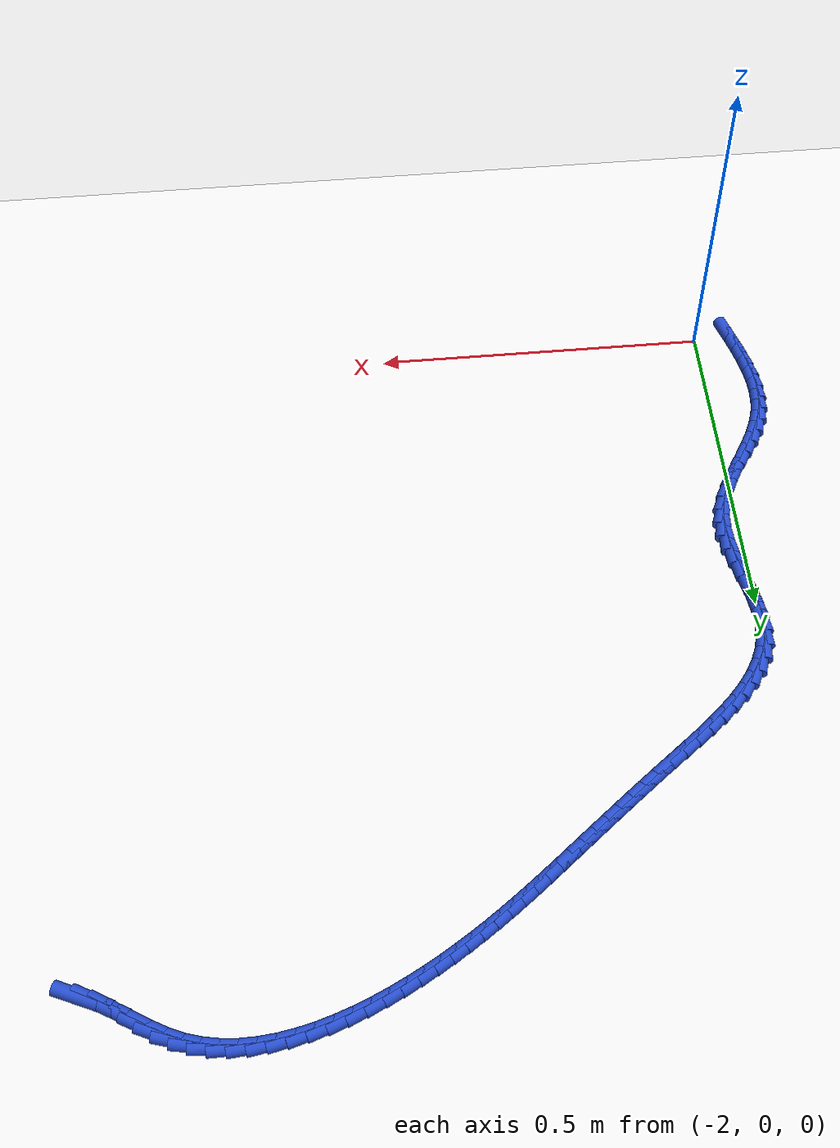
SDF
<sdf version="1.6">
 <world name="default">
  <model name="ground_plane">
   <static>1</static>
   <link name="link">
    <collision name="collision">
     <geometry><plane><normal>0 0 1</normal><size>100 100</size></plane></geometry>
     <surface><friction><ode><mu>100</mu><mu2>50</mu2></ode></friction></surface>
    </collision>
    <visual name="visual">
     <cast_shadows>0</cast_shadows>
     <geometry><plane><normal>0 0 1</normal><size>100 100</size></plane></geometry>
     <material>
      <script><uri>file://media/materials/scripts/gazebo.material</uri><name>Gazebo/WhiteGlow</name></script>
     </material>
    </visual>
   </link>
  </model>
  <model name="line">
   <link name="link_71">
    <pose>-1.0619951755616022 0.9972905847153315 0.01 0 1.57 -0.41717820655222315</pose>
    <collision name="collision">
     <geometry><cylinder><radius>0.01</radius><length>0.08</length></cylinder></geometry>
    </collision>
    <visual name="visual">
     <material>
      <script><name>Gazebo/Blue</name><uri>file://media/materials/scripts/gazebo.material</uri></script>
     </material>
     <geometry><cylinder><radius>0.01</radius><length>0.08</length></cylinder></geometry>
    </visual>
   </link>
   <link name="link_72">
    <pose>-1.0830137298712708 1.0066058453347537 0.01 0 1.57 -0.5041663490242357</pose>
    <collision name="collision">
     <geometry><cylinder><radius>0.01</radius><length>0.08</length></cylinder></geometry>
    </collision>
    <visual name="visual">
     <material>
      <script><name>Gazebo/Blue</name><uri>file://media/materials/scripts/gazebo.material</uri></script>
     </material>
     <geometry><cylinder><radius>0.01</radius><length>0.08</length></cylinder></geometry>
    </visual>
   </link>
   <link name="link_73">
    <pose>-1.1034783453525545 1.0178966780143992 0.01 0 1.57 -0.5463712213394187</pose>
    <collision name="collision">
     <geometry><cylinder><radius>0.01</radius><length>0.08</length></cylinder></geometry>
    </collision>
    <visual name="visual">
     <material>
      <script><name>Gazebo/Blue</name><uri>file://media/materials/scripts/gazebo.material</uri></script>
     </material>
     <geometry><cylinder><radius>0.01</radius><length>0.08</length></cylinder></geometry>
    </visual>
   </link>
   <link name="link_74">
    <pose>-1.1236657990406393 1.0301731419103466 0.01 0 1.57 -0.5444186775033684</pose>
    <collision name="collision">
     <geometry><cylinder><radius>0.01</radius><length>0.08</length></cylinder></geometry>
    </collision>
    <visual name="visual">
     <material>
      <script><name>Gazebo/Blue</name><uri>file://media/materials/scripts/gazebo.material</uri></script>
     </material>
     <geometry><cylinder><radius>0.01</radius><length>0.08</length></cylinder></geometry>
    </visual>
   </link>
   <link name="link_75">
    <pose>-1.1438644750995501 1.0424024705698505 0.01 0 1.57 -0.49816332512608186</pose>
    <collision name="collision">
     <geometry><cylinder><radius>0.01</radius><length>0.08</length></cylinder></geometry>
    </collision>
    <visual name="visual">
     <material>
      <script><name>Gazebo/Blue</name><uri>file://media/materials/scripts/gazebo.material</uri></script>
     </material>
     <geometry><cylinder><radius>0.01</radius><length>0.08</length></cylinder></geometry>
    </visual>
   </link>
   <link name="link_76">
    <pose>-1.16436275769331 1.0535518975401656 0.01 0 1.57 -0.40585514558315117</pose>
    <collision name="collision">
     <geometry><cylinder><radius>0.01</radius><length>0.08</length></cylinder></geometry>
    </collision>
    <visual name="visual">
     <material>
      <script><name>Gazebo/Blue</name><uri>file://media/materials/scripts/gazebo.material</uri></script>
     </material>
     <geometry><cylinder><radius>0.01</radius><length>0.08</length></cylinder></geometry>
    </visual>
   </link>
   <link name="link_77">
    <pose>-1.1854420920754611 1.0626099447501587 0.01 0 1.57 -0.29059269104152613</pose>
    <collision name="collision">
     <geometry><cylinder><radius>0.01</radius><length>0.08</length></cylinder></geometry>
    </collision>
    <visual name="visual">
     <material>
      <script><name>Gazebo/Blue</name><uri>file://media/materials/scripts/gazebo.material</uri></script>
     </material>
     <geometry><cylinder><radius>0.01</radius><length>0.08</length></cylinder></geometry>
    </visual>
   </link>
   <link name="link_78">
    <pose>-1.2072037353344516 1.069117946336075 0.01 0 1.57 -0.18095843489095376</pose>
    <collision name="collision">
     <geometry><cylinder><radius>0.01</radius><length>0.08</length></cylinder></geometry>
    </collision>
    <visual name="visual">
     <material>
      <script><name>Gazebo/Blue</name><uri>file://media/materials/scripts/gazebo.material</uri></script>
     </material>
     <geometry><cylinder><radius>0.01</radius><length>0.08</length></cylinder></geometry>
    </visual>
   </link>
   <link name="link_79">
    <pose>-1.2295565140203688 1.073207607897364 0.01 0 1.57 -0.08002004956473212</pose>
    <collision name="collision">
     <geometry><cylinder><radius>0.01</radius><length>0.08</length></cylinder></geometry>
    </collision>
    <visual name="visual">
     <material>
      <script><name>Gazebo/Blue</name><uri>file://media/materials/scripts/gazebo.material</uri></script>
     </material>
     <geometry><cylinder><radius>0.01</radius><length>0.08</length></cylinder></geometry>
    </visual>
   </link>
   <link name="link_80">
    <pose>-1.25239986398118 1.075039445442667 0.01 0 1.57 0.011425766356564426</pose>
    <collision name="collision">
     <geometry><cylinder><radius>0.01</radius><length>0.08</length></cylinder></geometry>
    </collision>
    <visual name="visual">
     <material>
      <script><name>Gazebo/Blue</name><uri>file://media/materials/scripts/gazebo.material</uri></script>
     </material>
     <geometry><cylinder><radius>0.01</radius><length>0.08</length></cylinder></geometry>
    </visual>
   </link>
   <link name="link_81">
    <pose>-1.2756332210648524 1.074773974980625 0.01 0 1.57 0.09335035310838788</pose>
    <collision name="collision">
     <geometry><cylinder><radius>0.01</radius><length>0.08</length></cylinder></geometry>
    </collision>
    <visual name="visual">
     <material>
      <script><name>Gazebo/Blue</name><uri>file://media/materials/scripts/gazebo.material</uri></script>
     </material>
     <geometry><cylinder><radius>0.01</radius><length>0.08</length></cylinder></geometry>
    </visual>
   </link>
   <link name="link_82">
    <pose>-1.2991560211193534 1.0725717125198793 0.01 0 1.57 0.16623964003237704</pose>
    <collision name="collision">
     <geometry><cylinder><radius>0.01</radius><length>0.08</length></cylinder></geometry>
    </collision>
    <visual name="visual">
     <material>
      <script><name>Gazebo/Blue</name><uri>file://media/materials/scripts/gazebo.material</uri></script>
     </material>
     <geometry><cylinder><radius>0.01</radius><length>0.08</length></cylinder></geometry>
    </visual>
   </link>
   <link name="link_83">
    <pose>-1.3228676999926507 1.068593174069071 0.01 0 1.57 0.23086372103340913</pose>
    <collision name="collision">
     <geometry><cylinder><radius>0.01</radius><length>0.08</length></cylinder></geometry>
    </collision>
    <visual name="visual">
     <material>
      <script><name>Gazebo/Blue</name><uri>file://media/materials/scripts/gazebo.material</uri></script>
     </material>
     <geometry><cylinder><radius>0.01</radius><length>0.08</length></cylinder></geometry>
    </visual>
   </link>
   <link name="link_84">
    <pose>-1.3466676935327107 1.062998875636841 0.01 0 1.57 0.2881065337302563</pose>
    <collision name="collision">
     <geometry><cylinder><radius>0.01</radius><length>0.08</length></cylinder></geometry>
    </collision>
    <visual name="visual">
     <material>
      <script><name>Gazebo/Blue</name><uri>file://media/materials/scripts/gazebo.material</uri></script>
     </material>
     <geometry><cylinder><radius>0.01</radius><length>0.08</length></cylinder></geometry>
    </visual>
   </link>
   <link name="link_85">
    <pose>-1.3704554375875009 1.0559493332318306 0.01 0 1.57 0.33885732373718963</pose>
    <collision name="collision">
     <geometry><cylinder><radius>0.01</radius><length>0.08</length></cylinder></geometry>
    </collision>
    <visual name="visual">
     <material>
      <script><name>Gazebo/Blue</name><uri>file://media/materials/scripts/gazebo.material</uri></script>
     </material>
     <geometry><cylinder><radius>0.01</radius><length>0.08</length></cylinder></geometry>
    </visual>
   </link>
   <link name="link_86">
    <pose>-1.394130368004989 1.047605062862681 0.01 0 1.57 0.3839504416106811</pose>
    <collision name="collision">
     <geometry><cylinder><radius>0.01</radius><length>0.08</length></cylinder></geometry>
    </collision>
    <visual name="visual">
     <material>
      <script><name>Gazebo/Blue</name><uri>file://media/materials/scripts/gazebo.material</uri></script>
     </material>
     <geometry><cylinder><radius>0.01</radius><length>0.08</length></cylinder></geometry>
    </visual>
   </link>
   <link name="link_87">
    <pose>-1.4175919206331427 1.038126580538034 0.01 0 1.57 0.42413766194521507</pose>
    <collision name="collision">
     <geometry><cylinder><radius>0.01</radius><length>0.08</length></cylinder></geometry>
    </collision>
    <visual name="visual">
     <material>
      <script><name>Gazebo/Blue</name><uri>file://media/materials/scripts/gazebo.material</uri></script>
     </material>
     <geometry><cylinder><radius>0.01</radius><length>0.08</length></cylinder></geometry>
    </visual>
   </link>
   <link name="link_88">
    <pose>-1.4407395313199283 1.0276744022665294 0.01 0 1.57 0.4600801539726298</pose>
    <collision name="collision">
     <geometry><cylinder><radius>0.01</radius><length>0.08</length></cylinder></geometry>
    </collision>
    <visual name="visual">
     <material>
      <script><name>Gazebo/Blue</name><uri>file://media/materials/scripts/gazebo.material</uri></script>
     </material>
     <geometry><cylinder><radius>0.01</radius><length>0.08</length></cylinder></geometry>
    </visual>
   </link>
   <link name="link_89">
    <pose>-1.4634726359133141 1.0164090440568094 0.01 0 1.57 0.4923512137338881</pose>
    <collision name="collision">
     <geometry><cylinder><radius>0.01</radius><length>0.08</length></cylinder></geometry>
    </collision>
    <visual name="visual">
     <material>
      <script><name>Gazebo/Blue</name><uri>file://media/materials/scripts/gazebo.material</uri></script>
     </material>
     <geometry><cylinder><radius>0.01</radius><length>0.08</length></cylinder></geometry>
    </visual>
   </link>
   <link name="link_90">
    <pose>-1.4856906702612664 1.004491021917515 0.01 0 1.57 0.5214452828047791</pose>
    <collision name="collision">
     <geometry><cylinder><radius>0.01</radius><length>0.08</length></cylinder></geometry>
    </collision>
    <visual name="visual">
     <material>
      <script><name>Gazebo/Blue</name><uri>file://media/materials/scripts/gazebo.material</uri></script>
     </material>
     <geometry><cylinder><radius>0.01</radius><length>0.08</length></cylinder></geometry>
    </visual>
   </link>
   <link name="link_91">
    <pose>-1.5072932595968032 0.9920807122474734 0.01 0 1.57 0.5479879896261779</pose>
    <collision name="collision">
     <geometry><cylinder><radius>0.01</radius><length>0.08</length></cylinder></geometry>
    </collision>
    <visual name="visual">
     <material>
      <script><name>Gazebo/Blue</name><uri>file://media/materials/scripts/gazebo.material</uri></script>
     </material>
     <geometry><cylinder><radius>0.01</radius><length>0.08</length></cylinder></geometry>
    </visual>
   </link>
   <link name="link_92">
    <pose>-1.528225887309888 0.9793046859854214 0.01 0 1.57 0.5725260423239694</pose>
    <collision name="collision">
     <geometry><cylinder><radius>0.01</radius><length>0.08</length></cylinder></geometry>
    </collision>
    <visual name="visual">
     <material>
      <script><name>Gazebo/Blue</name><uri>file://media/materials/scripts/gazebo.material</uri></script>
     </material>
     <geometry><cylinder><radius>0.01</radius><length>0.08</length></cylinder></geometry>
    </visual>
   </link>
   <link name="link_93">
    <pose>-1.5485393089557906 0.9662119101230595 0.01 0 1.57 0.5949175428169848</pose>
    <collision name="collision">
     <geometry><cylinder><radius>0.01</radius><length>0.08</length></cylinder></geometry>
    </collision>
    <visual name="visual">
     <material>
      <script><name>Gazebo/Blue</name><uri>file://media/materials/scripts/gazebo.material</uri></script>
     </material>
     <geometry><cylinder><radius>0.01</radius><length>0.08</length></cylinder></geometry>
    </visual>
   </link>
   <link name="link_94">
    <pose>-1.5682989938779572 0.9528405050238737 0.01 0 1.57 0.614959366896582</pose>
    <collision name="collision">
     <geometry><cylinder><radius>0.01</radius><length>0.08</length></cylinder></geometry>
    </collision>
    <visual name="visual">
     <material>
      <script><name>Gazebo/Blue</name><uri>file://media/materials/scripts/gazebo.material</uri></script>
     </material>
     <geometry><cylinder><radius>0.01</radius><length>0.08</length></cylinder></geometry>
    </visual>
   </link>
   <link name="link_95">
    <pose>-1.5875704114198343 0.9392285910513496 0.01 0 1.57 0.6324721360858476</pose>
    <collision name="collision">
     <geometry><cylinder><radius>0.01</radius><length>0.08</length></cylinder></geometry>
    </collision>
    <visual name="visual">
     <material>
      <script><name>Gazebo/Blue</name><uri>file://media/materials/scripts/gazebo.material</uri></script>
     </material>
     <geometry><cylinder><radius>0.01</radius><length>0.08</length></cylinder></geometry>
    </visual>
   </link>
   <link name="link_96">
    <pose>-1.6064190309248698 0.9254142885689727 0.01 0 1.57 0.6473009762218896</pose>
    <collision name="collision">
     <geometry><cylinder><radius>0.01</radius><length>0.08</length></cylinder></geometry>
    </collision>
    <visual name="visual">
     <material>
      <script><name>Gazebo/Blue</name><uri>file://media/materials/scripts/gazebo.material</uri></script>
     </material>
     <geometry><cylinder><radius>0.01</radius><length>0.08</length></cylinder></geometry>
    </visual>
   </link>
   <link name="link_97">
    <pose>-1.624910321736509 0.9114357179402286 0.01 0 1.57 0.6593155275022328</pose>
    <collision name="collision">
     <geometry><cylinder><radius>0.01</radius><length>0.08</length></cylinder></geometry>
    </collision>
    <visual name="visual">
     <material>
      <script><name>Gazebo/Blue</name><uri>file://media/materials/scripts/gazebo.material</uri></script>
     </material>
     <geometry><cylinder><radius>0.01</radius><length>0.08</length></cylinder></geometry>
    </visual>
   </link>
   <link name="link_98">
    <pose>-1.6431097531981997 0.8973309995286032 0.01 0 1.57 0.6684094611919306</pose>
    <collision name="collision">
     <geometry><cylinder><radius>0.01</radius><length>0.08</length></cylinder></geometry>
    </collision>
    <visual name="visual">
     <material>
      <script><name>Gazebo/Blue</name><uri>file://media/materials/scripts/gazebo.material</uri></script>
     </material>
     <geometry><cylinder><radius>0.01</radius><length>0.08</length></cylinder></geometry>
    </visual>
   </link>
   <link name="link_99">
    <pose>-1.6610827946533886 0.8831382536975818 0.01 0 1.57 0.674499769587454</pose>
    <collision name="collision">
     <geometry><cylinder><radius>0.01</radius><length>0.08</length></cylinder></geometry>
    </collision>
    <visual name="visual">
     <material>
      <script><name>Gazebo/Blue</name><uri>file://media/materials/scripts/gazebo.material</uri></script>
     </material>
     <geometry><cylinder><radius>0.01</radius><length>0.08</length></cylinder></geometry>
    </visual>
   </link>
   <link name="link_100">
    <pose>-1.6788949154455226 0.8688956008106505 0.01 0 1.57 0.6775260787528726</pose>
    <collision name="collision">
     <geometry><cylinder><radius>0.01</radius><length>0.08</length></cylinder></geometry>
    </collision>
    <visual name="visual">
     <material>
      <script><name>Gazebo/Blue</name><uri>file://media/materials/scripts/gazebo.material</uri></script>
     </material>
     <geometry><cylinder><radius>0.01</radius><length>0.08</length></cylinder></geometry>
    </visual>
   </link>
   <link name="link_101">
    <pose>-1.696611584918048 0.8546411612312947 0.01 0 1.57 0.6775412201851119</pose>
    <collision name="collision">
     <geometry><cylinder><radius>0.01</radius><length>0.08</length></cylinder></geometry>
    </collision>
    <visual name="visual">
     <material>
      <script><name>Gazebo/Blue</name><uri>file://media/materials/scripts/gazebo.material</uri></script>
     </material>
     <geometry><cylinder><radius>0.01</radius><length>0.08</length></cylinder></geometry>
    </visual>
   </link>
   <link name="link_102">
    <pose>-1.7142984869347342 0.8404102307143501 0.01 0 1.57 0.6759508668978722</pose>
    <collision name="collision">
     <geometry><cylinder><radius>0.01</radius><length>0.08</length></cylinder></geometry>
    </collision>
    <visual name="visual">
     <material>
      <script><name>Gazebo/Blue</name><uri>file://media/materials/scripts/gazebo.material</uri></script>
     </material>
     <geometry><cylinder><radius>0.01</radius><length>0.08</length></cylinder></geometry>
    </visual>
   </link>
   <link name="link_103">
    <pose>-1.7320246478381358 0.8261940942916053 0.01 0 1.57 0.6738919612600929</pose>
    <collision name="collision">
     <geometry><cylinder><radius>0.01</radius><length>0.08</length></cylinder></geometry>
    </collision>
    <visual name="visual">
     <material>
      <script><name>Gazebo/Blue</name><uri>file://media/materials/scripts/gazebo.material</uri></script>
     </material>
     <geometry><cylinder><radius>0.01</radius><length>0.08</length></cylinder></geometry>
    </visual>
   </link>
   <link name="link_104">
    <pose>-1.7498617365782736 0.8119492415412916 0.01 0 1.57 0.6714235759140815</pose>
    <collision name="collision">
     <geometry><cylinder><radius>0.01</radius><length>0.08</length></cylinder></geometry>
    </collision>
    <visual name="visual">
     <material>
      <script><name>Gazebo/Blue</name><uri>file://media/materials/scripts/gazebo.material</uri></script>
     </material>
     <geometry><cylinder><radius>0.01</radius><length>0.08</length></cylinder></geometry>
    </visual>
   </link>
   <link name="link_105">
    <pose>-1.7678814942246637 0.7976312124376699 0.01 0 1.57 0.6685823350916043</pose>
    <collision name="collision">
     <geometry><cylinder><radius>0.01</radius><length>0.08</length></cylinder></geometry>
    </collision>
    <visual name="visual">
     <material>
      <script><name>Gazebo/Blue</name><uri>file://media/materials/scripts/gazebo.material</uri></script>
     </material>
     <geometry><cylinder><radius>0.01</radius><length>0.08</length></cylinder></geometry>
    </visual>
   </link>
   <link name="link_106">
    <pose>-1.7861556618468224 0.7831955469550019 0.01 0 1.57 0.6654113985714086</pose>
    <collision name="collision">
     <geometry><cylinder><radius>0.01</radius><length>0.08</length></cylinder></geometry>
    </collision>
    <visual name="visual">
     <material>
      <script><name>Gazebo/Blue</name><uri>file://media/materials/scripts/gazebo.material</uri></script>
     </material>
     <geometry><cylinder><radius>0.01</radius><length>0.08</length></cylinder></geometry>
    </visual>
   </link>
   <link name="link_107">
    <pose>-1.8047559805142663 0.7685977850675493 0.01 0 1.57 0.6619585963277157</pose>
    <collision name="collision">
     <geometry><cylinder><radius>0.01</radius><length>0.08</length></cylinder></geometry>
    </collision>
    <visual name="visual">
     <material>
      <script><name>Gazebo/Blue</name><uri>file://media/materials/scripts/gazebo.material</uri></script>
     </material>
     <geometry><cylinder><radius>0.01</radius><length>0.08</length></cylinder></geometry>
    </visual>
   </link>
   <link name="link_108">
    <pose>-1.823754191296511 0.7537934667495734 0.01 0 1.57 0.6582745740885197</pose>
    <collision name="collision">
     <geometry><cylinder><radius>0.01</radius><length>0.08</length></cylinder></geometry>
    </collision>
    <visual name="visual">
     <material>
      <script><name>Gazebo/Blue</name><uri>file://media/materials/scripts/gazebo.material</uri></script>
     </material>
     <geometry><cylinder><radius>0.01</radius><length>0.08</length></cylinder></geometry>
    </visual>
   </link>
   <link name="link_109">
    <pose>-1.8432220310571614 0.7387381318099389 0.01 0 1.57 0.6567263850847767</pose>
    <collision name="collision">
     <geometry><cylinder><radius>0.01</radius><length>0.08</length></cylinder></geometry>
    </collision>
    <visual name="visual">
     <material>
      <script><name>Gazebo/Blue</name><uri>file://media/materials/scripts/gazebo.material</uri></script>
     </material>
     <geometry><cylinder><radius>0.01</radius><length>0.08</length></cylinder></geometry>
    </visual>
   </link>
   <link name="link_110">
    <pose>-1.8631402223879252 0.7233837409427062 0.01 0 1.57 0.6653962548452813</pose>
    <collision name="collision">
     <geometry><cylinder><radius>0.01</radius><length>0.08</length></cylinder></geometry>
    </collision>
    <visual name="visual">
     <material>
      <script><name>Gazebo/Blue</name><uri>file://media/materials/scripts/gazebo.material</uri></script>
     </material>
     <geometry><cylinder><radius>0.01</radius><length>0.08</length></cylinder></geometry>
    </visual>
   </link>
   <link name="link_111">
    <pose>-1.883163836950601 0.7076694486958192 0.01 0 1.57 0.6860476418491631</pose>
    <collision name="collision">
     <geometry><cylinder><radius>0.01</radius><length>0.08</length></cylinder></geometry>
    </collision>
    <visual name="visual">
     <material>
      <script><name>Gazebo/Blue</name><uri>file://media/materials/scripts/gazebo.material</uri></script>
     </material>
     <geometry><cylinder><radius>0.01</radius><length>0.08</length></cylinder></geometry>
    </visual>
   </link>
   <link name="link_112">
    <pose>-1.9028751412966332 0.6915315465734059 0.01 0 1.57 0.719325622201434</pose>
    <collision name="collision">
     <geometry><cylinder><radius>0.01</radius><length>0.08</length></cylinder></geometry>
    </collision>
    <visual name="visual">
     <material>
      <script><name>Gazebo/Blue</name><uri>file://media/materials/scripts/gazebo.material</uri></script>
     </material>
     <geometry><cylinder><radius>0.01</radius><length>0.08</length></cylinder></geometry>
    </visual>
   </link>
   <link name="link_113">
    <pose>-1.9218564019774642 0.6749063260795942 0.01 0 1.57 0.7666274103440321</pose>
    <collision name="collision">
     <geometry><cylinder><radius>0.01</radius><length>0.08</length></cylinder></geometry>
    </collision>
    <visual name="visual">
     <material>
      <script><name>Gazebo/Blue</name><uri>file://media/materials/scripts/gazebo.material</uri></script>
     </material>
     <geometry><cylinder><radius>0.01</radius><length>0.08</length></cylinder></geometry>
    </visual>
   </link>
   <link name="link_114">
    <pose>-1.9396898855445364 0.6577300787185122 0.01 0 1.57 0.8300852586810039</pose>
    <collision name="collision">
     <geometry><cylinder><radius>0.01</radius><length>0.08</length></cylinder></geometry>
    </collision>
    <visual name="visual">
     <material>
      <script><name>Gazebo/Blue</name><uri>file://media/materials/scripts/gazebo.material</uri></script>
     </material>
     <geometry><cylinder><radius>0.01</radius><length>0.08</length></cylinder></geometry>
    </visual>
   </link>
   <link name="link_115">
    <pose>-1.9559578585492932 0.6399390959942876 0.01 0 1.57 0.9124705681648018</pose>
    <collision name="collision">
     <geometry><cylinder><radius>0.01</radius><length>0.08</length></cylinder></geometry>
    </collision>
    <visual name="visual">
     <material>
      <script><name>Gazebo/Blue</name><uri>file://media/materials/scripts/gazebo.material</uri></script>
     </material>
     <geometry><cylinder><radius>0.01</radius><length>0.08</length></cylinder></geometry>
    </visual>
   </link>
   <link name="link_116">
    <pose>-1.9702425875431766 0.6214696694110482 0.01 0 1.57 1.0168324996953533</pose>
    <collision name="collision">
     <geometry><cylinder><radius>0.01</radius><length>0.08</length></cylinder></geometry>
    </collision>
    <visual name="visual">
     <material>
      <script><name>Gazebo/Blue</name><uri>file://media/materials/scripts/gazebo.material</uri></script>
     </material>
     <geometry><cylinder><radius>0.01</radius><length>0.08</length></cylinder></geometry>
    </visual>
   </link>
   <link name="link_117">
    <pose>-1.9821263390776303 0.6022580904729227 0.01 0 1.57 1.1455689389465915</pose>
    <collision name="collision">
     <geometry><cylinder><radius>0.01</radius><length>0.08</length></cylinder></geometry>
    </collision>
    <visual name="visual">
     <material>
      <script><name>Gazebo/Blue</name><uri>file://media/materials/scripts/gazebo.material</uri></script>
     </material>
     <geometry><cylinder><radius>0.01</radius><length>0.08</length></cylinder></geometry>
    </visual>
   </link>
   <link name="link_118">
    <pose>-1.9911913797040959 0.5822406506840376 0.01 0 1.57 1.298665383325481</pose>
    <collision name="collision">
     <geometry><cylinder><radius>0.01</radius><length>0.08</length></cylinder></geometry>
    </collision>
    <visual name="visual">
     <material>
      <script><name>Gazebo/Blue</name><uri>file://media/materials/scripts/gazebo.material</uri></script>
     </material>
     <geometry><cylinder><radius>0.01</radius><length>0.08</length></cylinder></geometry>
    </visual>
   </link>
   <link name="link_119">
    <pose>-1.997019975974018 0.5613536415485219 0.01 0 1.57 1.4663684896630989</pose>
    <collision name="collision">
     <geometry><cylinder><radius>0.01</radius><length>0.08</length></cylinder></geometry>
    </collision>
    <visual name="visual">
     <material>
      <script><name>Gazebo/Blue</name><uri>file://media/materials/scripts/gazebo.material</uri></script>
     </material>
     <geometry><cylinder><radius>0.01</radius><length>0.08</length></cylinder></geometry>
    </visual>
   </link>
   <link name="link_120">
    <pose>-1.9993046706888136 0.539555012600101 0.01 0 1.57 -1.5369145867809686</pose>
    <collision name="collision">
     <geometry><cylinder><radius>0.01</radius><length>0.08</length></cylinder></geometry>
    </collision>
    <visual name="visual">
     <material>
      <script><name>Gazebo/Blue</name><uri>file://media/materials/scripts/gazebo.material</uri></script>
     </material>
     <geometry><cylinder><radius>0.01</radius><length>0.08</length></cylinder></geometry>
    </visual>
   </link>
   <link name="link_121">
    <pose>-1.998538818969266 0.516959991271588 0.01 0 1.57 -1.4435254099046584</pose>
    <collision name="collision">
     <geometry><cylinder><radius>0.01</radius><length>0.08</length></cylinder></geometry>
    </collision>
    <visual name="visual">
     <material>
      <script><name>Gazebo/Blue</name><uri>file://media/materials/scripts/gazebo.material</uri></script>
     </material>
     <geometry><cylinder><radius>0.01</radius><length>0.08</length></cylinder></geometry>
    </visual>
   </link>
   <link name="link_122">
    <pose>-1.9955692209444018 0.4937532208713949 0.01 0 1.57 -1.3897971148266666</pose>
    <collision name="collision">
     <geometry><cylinder><radius>0.01</radius><length>0.08</length></cylinder></geometry>
    </collision>
    <visual name="visual">
     <material>
      <script><name>Gazebo/Blue</name><uri>file://media/materials/scripts/gazebo.material</uri></script>
     </material>
     <geometry><cylinder><radius>0.01</radius><length>0.08</length></cylinder></geometry>
    </visual>
   </link>
   <link name="link_123">
    <pose>-1.9912442297810167 0.4701196497213701 0.01 0 1.57 -1.3711084108584073</pose>
    <collision name="collision">
     <geometry><cylinder><radius>0.01</radius><length>0.08</length></cylinder></geometry>
    </collision>
    <visual name="visual">
     <material>
      <script><name>Gazebo/Blue</name><uri>file://media/materials/scripts/gazebo.material</uri></script>
     </material>
     <geometry><cylinder><radius>0.01</radius><length>0.08</length></cylinder></geometry>
    </visual>
   </link>
   <link name="link_124">
    <pose>-1.98641219864591 0.4462442261433631 0.01 0 1.57 -1.3853108756747943</pose>
    <collision name="collision">
     <geometry><cylinder><radius>0.01</radius><length>0.08</length></cylinder></geometry>
    </collision>
    <visual name="visual">
     <material>
      <script><name>Gazebo/Blue</name><uri>file://media/materials/scripts/gazebo.material</uri></script>
     </material>
     <geometry><cylinder><radius>0.01</radius><length>0.08</length></cylinder></geometry>
    </visual>
   </link>
   <link name="link_125">
    <pose>-1.9819214807058771 0.4223118984592219 0.01 0 1.57 -1.4330004565943313</pose>
    <collision name="collision">
     <geometry><cylinder><radius>0.01</radius><length>0.08</length></cylinder></geometry>
    </collision>
    <visual name="visual">
     <material>
      <script><name>Gazebo/Blue</name><uri>file://media/materials/scripts/gazebo.material</uri></script>
     </material>
     <geometry><cylinder><radius>0.01</radius><length>0.08</length></cylinder></geometry>
    </visual>
   </link>
   <link name="link_126">
    <pose>-1.9786204291277154 0.3985076149907955 0.01 0 1.57 -1.5170820753851815</pose>
    <collision name="collision">
     <geometry><cylinder><radius>0.01</radius><length>0.08</length></cylinder></geometry>
    </collision>
    <visual name="visual">
     <material>
      <script><name>Gazebo/Blue</name><uri>file://media/materials/scripts/gazebo.material</uri></script>
     </material>
     <geometry><cylinder><radius>0.01</radius><length>0.08</length></cylinder></geometry>
    </visual>
   </link>
   <link name="link_127">
    <pose>-1.9773573970782232 0.37501632405993296 0.01 0 1.57 1.5003128374319135</pose>
    <collision name="collision">
     <geometry><cylinder><radius>0.01</radius><length>0.08</length></cylinder></geometry>
    </collision>
    <visual name="visual">
     <material>
      <script><name>Gazebo/Blue</name><uri>file://media/materials/scripts/gazebo.material</uri></script>
     </material>
     <geometry><cylinder><radius>0.01</radius><length>0.08</length></cylinder></geometry>
    </visual>
   </link>
   <link name="link_128">
    <pose>-1.9789807377241968 0.35202297398848276 0.01 0 1.57 1.3452930806433667</pose>
    <collision name="collision">
     <geometry><cylinder><radius>0.01</radius><length>0.08</length></cylinder></geometry>
    </collision>
    <visual name="visual">
     <material>
      <script><name>Gazebo/Blue</name><uri>file://media/materials/scripts/gazebo.material</uri></script>
     </material>
     <geometry><cylinder><radius>0.01</radius><length>0.08</length></cylinder></geometry>
    </visual>
   </link>
   <link name="link_129">
    <pose>-1.9841086442846025 0.3296699054889841 0.01 0 1.57 1.2120655142657806</pose>
    <collision name="collision">
     <geometry><cylinder><radius>0.01</radius><length>0.08</length></cylinder></geometry>
    </collision>
    <visual name="visual">
     <material>
      <script><name>Gazebo/Blue</name><uri>file://media/materials/scripts/gazebo.material</uri></script>
     </material>
     <geometry><cylinder><radius>0.01</radius><length>0.08</length></cylinder></geometry>
    </visual>
   </link>
   <link name="link_130">
    <pose>-1.9922720501158213 0.30789818383974016 0.01 0 1.57 1.1163984955807882</pose>
    <collision name="collision">
     <geometry><cylinder><radius>0.01</radius><length>0.08</length></cylinder></geometry>
    </collision>
    <visual name="visual">
     <material>
      <script><name>Gazebo/Blue</name><uri>file://media/materials/scripts/gazebo.material</uri></script>
     </material>
     <geometry><cylinder><radius>0.01</radius><length>0.08</length></cylinder></geometry>
    </visual>
   </link>
   <link name="link_131">
    <pose>-2.0026811446956736 0.28658949765515185 0.01 0 1.57 1.0557766887231061</pose>
    <collision name="collision">
     <geometry><cylinder><radius>0.01</radius><length>0.08</length></cylinder></geometry>
    </collision>
    <visual name="visual">
     <material>
      <script><name>Gazebo/Blue</name><uri>file://media/materials/scripts/gazebo.material</uri></script>
     </material>
     <geometry><cylinder><radius>0.01</radius><length>0.08</length></cylinder></geometry>
    </visual>
   </link>
   <link name="link_132">
    <pose>-2.0145460712005607 0.26562552697822034 0.01 0 1.57 1.0272498489067783</pose>
    <collision name="collision">
     <geometry><cylinder><radius>0.01</radius><length>0.08</length></cylinder></geometry>
    </collision>
    <visual name="visual">
     <material>
      <script><name>Gazebo/Blue</name><uri>file://media/materials/scripts/gazebo.material</uri></script>
     </material>
     <geometry><cylinder><radius>0.01</radius><length>0.08</length></cylinder></geometry>
    </visual>
   </link>
   <link name="link_133">
    <pose>-2.02707697280688 0.24488795185194703 0.01 0 1.57 1.029332427604703</pose>
    <collision name="collision">
     <geometry><cylinder><radius>0.01</radius><length>0.08</length></cylinder></geometry>
    </collision>
    <visual name="visual">
     <material>
      <script><name>Gazebo/Blue</name><uri>file://media/materials/scripts/gazebo.material</uri></script>
     </material>
     <geometry><cylinder><radius>0.01</radius><length>0.08</length></cylinder></geometry>
    </visual>
   </link>
   <link name="link_134">
    <pose>-2.039483992691031 0.22425845231933234 0.01 0 1.57 1.0627077375991516</pose>
    <collision name="collision">
     <geometry><cylinder><radius>0.01</radius><length>0.08</length></cylinder></geometry>
    </collision>
    <visual name="visual">
     <material>
      <script><name>Gazebo/Blue</name><uri>file://media/materials/scripts/gazebo.material</uri></script>
     </material>
     <geometry><cylinder><radius>0.01</radius><length>0.08</length></cylinder></geometry>
    </visual>
   </link>
   <link name="link_135">
    <pose>-2.050977274029412 0.20361870842337765 0.01 0 1.57 1.1303088449922467</pose>
    <collision name="collision">
     <geometry><cylinder><radius>0.01</radius><length>0.08</length></cylinder></geometry>
    </collision>
    <visual name="visual">
     <material>
      <script><name>Gazebo/Blue</name><uri>file://media/materials/scripts/gazebo.material</uri></script>
     </material>
     <geometry><cylinder><radius>0.01</radius><length>0.08</length></cylinder></geometry>
    </visual>
   </link>
   <link name="link_136">
    <pose>-2.0607669599984244 0.18285040020708423 0.01 0 1.57 1.2364975036166155</pose>
    <collision name="collision">
     <geometry><cylinder><radius>0.01</radius><length>0.08</length></cylinder></geometry>
    </collision>
    <visual name="visual">
     <material>
      <script><name>Gazebo/Blue</name><uri>file://media/materials/scripts/gazebo.material</uri></script>
     </material>
     <geometry><cylinder><radius>0.01</radius><length>0.08</length></cylinder></geometry>
    </visual>
   </link>
   <link name="link_137">
    <pose>-2.068066158059003 0.16183554481820664 0.01 0 1.57 1.368328149831446</pose>
    <collision name="collision">
     <geometry><cylinder><radius>0.01</radius><length>0.08</length></cylinder></geometry>
    </collision>
    <visual name="visual">
     <material>
      <script><name>Gazebo/Blue</name><uri>file://media/materials/scripts/gazebo.material</uri></script>
     </material>
     <geometry><cylinder><radius>0.01</radius><length>0.08</length></cylinder></geometry>
    </visual>
   </link>
   <link name="link_138">
    <pose>-2.072446566763236 0.14049693914742425 0.01 0 1.57 1.4911095123327485</pose>
    <collision name="collision">
     <geometry><cylinder><radius>0.01</radius><length>0.08</length></cylinder></geometry>
    </collision>
    <visual name="visual">
     <material>
      <script><name>Gazebo/Blue</name><uri>file://media/materials/scripts/gazebo.material</uri></script>
     </material>
     <geometry><cylinder><radius>0.01</radius><length>0.08</length></cylinder></geometry>
    </visual>
   </link>
   <link name="link_139">
    <pose>-2.0741762749363635 0.118836575071057 0.01 0 1.57 -1.5447270236893604</pose>
    <collision name="collision">
     <geometry><cylinder><radius>0.01</radius><length>0.08</length></cylinder></geometry>
    </collision>
    <visual name="visual">
     <material>
      <script><name>Gazebo/Blue</name><uri>file://media/materials/scripts/gazebo.material</uri></script>
     </material>
     <geometry><cylinder><radius>0.01</radius><length>0.08</length></cylinder></geometry>
    </visual>
   </link>
   <link name="link_140">
    <pose>-2.073603375646117 0.09686554271834363 0.01 0 1.57 -1.4577932986746311</pose>
    <collision name="collision">
     <geometry><cylinder><radius>0.01</radius><length>0.08</length></cylinder></geometry>
    </collision>
    <visual name="visual">
     <material>
      <script><name>Gazebo/Blue</name><uri>file://media/materials/scripts/gazebo.material</uri></script>
     </material>
     <geometry><cylinder><radius>0.01</radius><length>0.08</length></cylinder></geometry>
    </visual>
   </link>
   <link name="link_141">
    <pose>-2.0710759619602266 0.0745949322185219 0.01 0 1.57 -1.389562314590713</pose>
    <collision name="collision">
     <geometry><cylinder><radius>0.01</radius><length>0.08</length></cylinder></geometry>
    </collision>
    <visual name="visual">
     <material>
      <script><name>Gazebo/Blue</name><uri>file://media/materials/scripts/gazebo.material</uri></script>
     </material>
     <geometry><cylinder><radius>0.01</radius><length>0.08</length></cylinder></geometry>
    </visual>
   </link>
   <link name="link_142">
    <pose>-2.0669421269464214 0.052035833700830404 0.01 0 1.57 -1.3389228423565307</pose>
    <collision name="collision">
     <geometry><cylinder><radius>0.01</radius><length>0.08</length></cylinder></geometry>
    </collision>
    <visual name="visual">
     <material>
      <script><name>Gazebo/Blue</name><uri>file://media/materials/scripts/gazebo.material</uri></script>
     </material>
     <geometry><cylinder><radius>0.01</radius><length>0.08</length></cylinder></geometry>
    </visual>
   </link>
   <link name="link_143">
    <pose>-2.0615499636724324 0.02919933729450764 0.01 0 1.57 -1.3044784603181825</pose>
    <collision name="collision">
     <geometry><cylinder><radius>0.01</radius><length>0.08</length></cylinder></geometry>
    </collision>
    <visual name="visual">
     <material>
      <script><name>Gazebo/Blue</name><uri>file://media/materials/scripts/gazebo.material</uri></script>
     </material>
     <geometry><cylinder><radius>0.01</radius><length>0.08</length></cylinder></geometry>
    </visual>
   </link>
   <link name="link_144">
    <pose>-2.0552475652059883 0.006096533128791902 0.01 0 1.57 -1.2849602698104663</pose>
    <collision name="collision">
     <geometry><cylinder><radius>0.01</radius><length>0.08</length></cylinder></geometry>
    </collision>
    <visual name="visual">
     <material>
      <script><name>Gazebo/Blue</name><uri>file://media/materials/scripts/gazebo.material</uri></script>
     </material>
     <geometry><cylinder><radius>0.01</radius><length>0.08</length></cylinder></geometry>
    </visual>
   </link>
  </model>
 </world>
</sdf>
